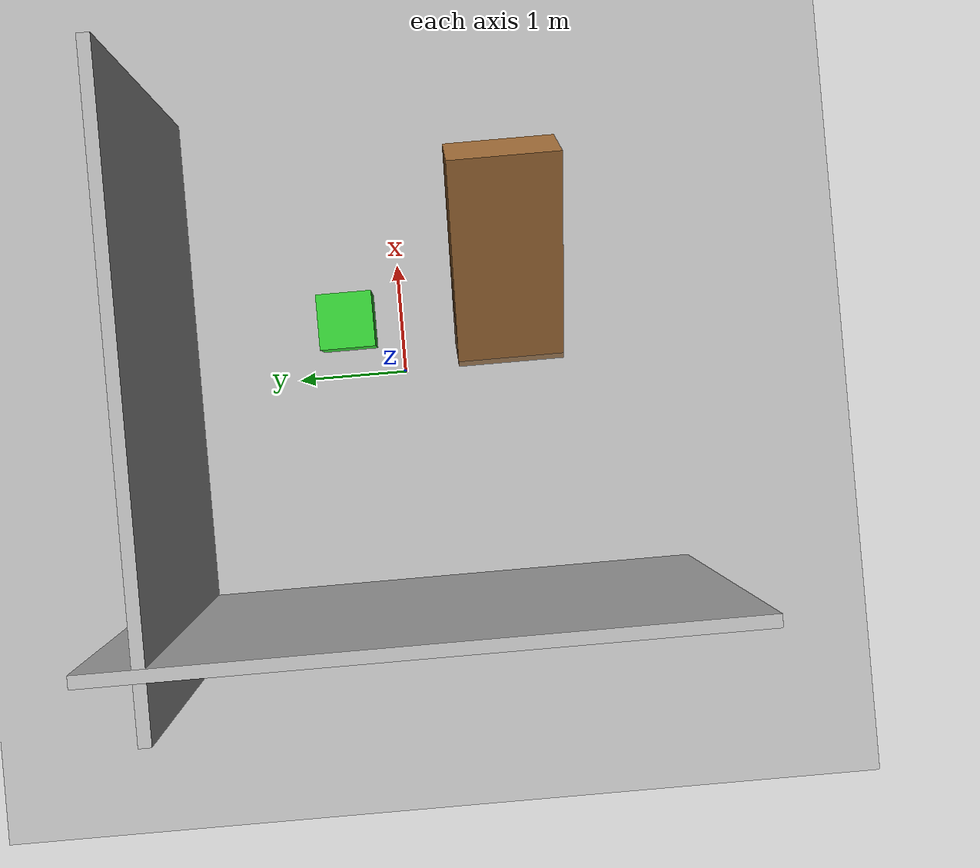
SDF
<?xml version="1.0" ?>
<sdf version="1.7">
  <world name="apartment">
    <plugin
      filename="ignition-gazebo-physics-system"
      name="ignition::gazebo::systems::Physics">
    </plugin>
    <plugin
      filename="ignition-gazebo-scene-broadcaster-system"
      name="ignition::gazebo::systems::SceneBroadcaster">
    </plugin>

    <!-- Light Source -->
    <light type="directional" name="sun_light">
      <pose>0 0 10 0 -0 0</pose>
      <diffuse>0.8 0.8 0.8 1</diffuse>
      <specular>0.2 0.2 0.2 1</specular>
      <attenuation>
        <range>1000</range>
        <constant>0.9</constant>
        <linear>0.01</linear>
        <quadratic>0.001</quadratic>
      </attenuation>
      <direction>-0.5 0.1 -0.9</direction>
      <cast_shadows>true</cast_shadows>
    </light>

    <!-- Ground Plane -->
    <model name="ground_plane">
      <static>true</static>
      <link name="link">
        <collision name="collision">
          <geometry>
            <plane>
              <normal>0 0 1</normal>
              <size>10 10</size>
            </plane>
          </geometry>
          <surface>
            <friction>
              <ode>
                <mu>0.8</mu>
                <mu2>0.8</mu2>
              </ode>
            </friction>
          </surface>
        </collision>
        <visual name="visual">
          <geometry>
            <plane>
              <normal>0 0 1</normal>
              <size>10 10</size>
            </plane>
          </geometry>
          <material>
            <ambient>0.5 0.5 0.5 1</ambient>
            <diffuse>0.5 0.5 0.5 1</diffuse>
            <specular>0.1 0.1 0.1 1</specular>
          </material>
        </visual>
      </link>
    </model>

    <!-- Walls forming a corner -->
    <model name="wall_1">
      <static>true</static>
      <link name="link">
        <pose> -2 0 1.25 0 0 0 </pose>
        <collision name="collision">
          <geometry>
            <box>
              <size>0.1 5 2.5</size>
            </box>
          </geometry>
        </collision>
        <visual name="visual">
          <geometry>
            <box>
              <size>0.1 5 2.5</size>
            </box>
          </geometry>
          <material>
            <ambient>0.7 0.7 0.7 1</ambient>
            <diffuse>0.7 0.7 0.7 1</diffuse>
            <specular>0.1 0.1 0.1 1</specular>
          </material>
        </visual>
      </link>
    </model>

    <model name="wall_2">
      <static>true</static>
      <link name="link">
        <pose> 0 2 1.25 0 0 1.57079632679 </pose> <!-- Rotate to form corner -->
        <collision name="collision">
          <geometry>
            <box>
              <size>0.1 5 2.5</size>
            </box>
          </geometry>
        </collision>
        <visual name="visual">
          <geometry>
            <box>
              <size>0.1 5 2.5</size>
            </box>
          </geometry>
          <material>
            <ambient>0.7 0.7 0.7 1</ambient>
            <diffuse>0.7 0.7 0.7 1</diffuse>
            <specular>0.1 0.1 0.1 1</specular>
          </material>
        </visual>
      </link>
    </model>

    <!-- Ramp -->
    <model name="ramp">
      <static>true</static>
      <link name="link">
        <pose> 1 -1 0.25 0 -0.5235987756 0 </pose> <!-- 30 degree incline -->
        <collision name="collision">
          <geometry>
            <box>
              <size>2 1 0.5</size>
            </box>
          </geometry>
        </collision>
        <visual name="visual">
          <geometry>
            <box>
              <size>2 1 0.5</size>
            </box>
          </geometry>
          <material>
            <ambient>0.6 0.4 0.2 1</ambient>
            <diffuse>0.6 0.4 0.2 1</diffuse>
            <specular>0.1 0.1 0.1 1</specular>
          </material>
        </visual>
      </link>
    </model>

    <!-- Simple Box Obstacle -->
    <model name="simple_box">
      <pose> 0.5 0.5 0.25 0 0 0 </pose>
      <link name="link">
        <collision name="collision">
          <geometry>
            <box>
              <size>0.5 0.5 0.5</size>
            </box>
          </geometry>
        </collision>
        <visual name="visual">
          <geometry>
            <box>
              <size>0.5 0.5 0.5</size>
            </box>
          </geometry>
          <material>
            <ambient>0.2 0.8 0.2 1</ambient>
            <diffuse>0.2 0.8 0.2 1</diffuse>
            <specular>0.1 0.1 0.1 1</specular>
          </material>
        </visual>
      </link>
    </model>

  </world>
</sdf>
